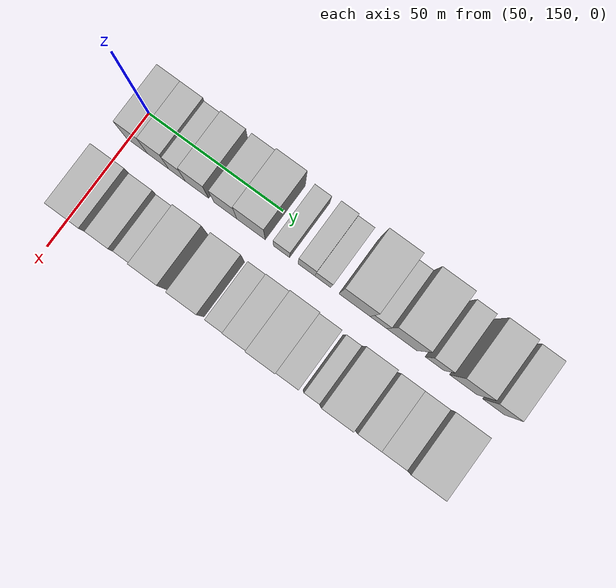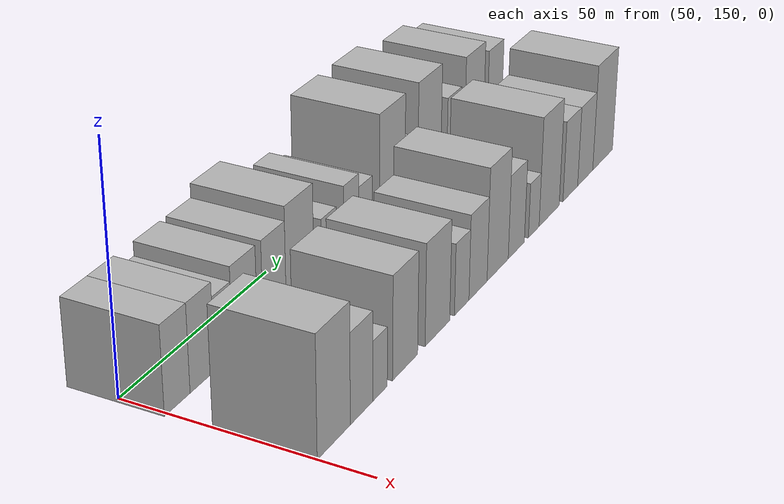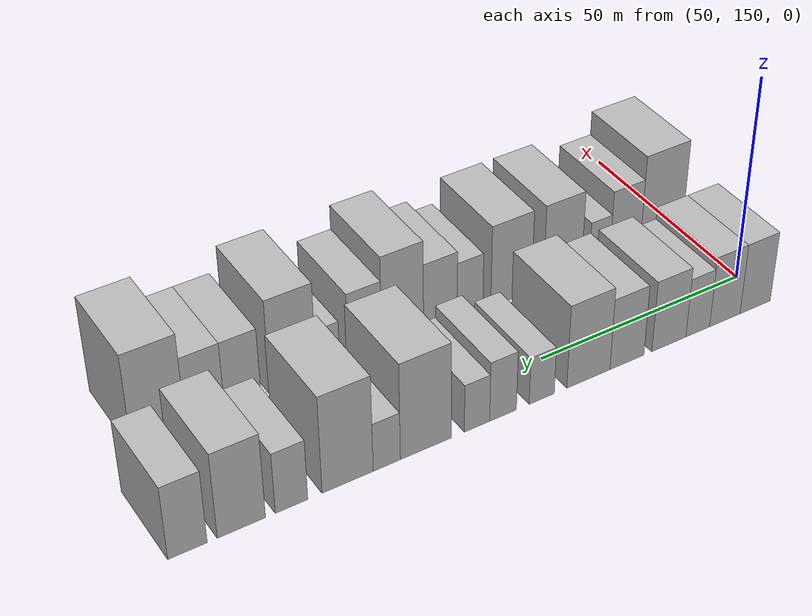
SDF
<sdf version="1.6">
 <world name="default">
  <model name="building_44">
   <static>1</static>
   <pose>50.0000 153.0716 0 0.000000 0.000000 0.000000</pose>
   <link name="link">
    <pose>0 0 9.00 0 0 0</pose>
    <collision name="collision"><geometry><box><size>20.0000 8.0604 18.0000</size></box></geometry></collision>
    <visual name="visual">
     <cast_shadows>0</cast_shadows>
     <geometry><box><size>20.0000 8.0604 18.0000</size></box></geometry>
     <material>
      <script>
       <uri>model://HANNAS_wall/materials/scripts</uri>
       <uri>model://HANNAS_wall/materials/textures</uri>
       <name>vrc/HANNAS_wall</name>
      </script>
     </material>
    </visual>
   </link>
  </model>
  <model name="building_45">
   <static>1</static>
   <pose>50.0000 161.0884 0 0.000000 0.000000 0.000000</pose>
   <link name="link">
    <pose>0 0 9.00 0 0 0</pose>
    <collision name="collision"><geometry><box><size>20.0000 7.9732 18.0000</size></box></geometry></collision>
    <visual name="visual">
     <cast_shadows>0</cast_shadows>
     <geometry><box><size>20.0000 7.9732 18.0000</size></box></geometry>
     <material>
      <script>
       <uri>model://HANNAS_wall/materials/scripts</uri>
       <uri>model://HANNAS_wall/materials/textures</uri>
       <name>vrc/HANNAS_wall</name>
      </script>
     </material>
    </visual>
   </link>
  </model>
  <model name="building_46">
   <static>1</static>
   <pose>50.0000 168.1415 0 0.000000 0.000000 0.000000</pose>
   <link name="link">
    <pose>0 0 7.50 0 0 0</pose>
    <collision name="collision"><geometry><box><size>20.0000 6.1328 15.0000</size></box></geometry></collision>
    <visual name="visual">
     <cast_shadows>0</cast_shadows>
     <geometry><box><size>20.0000 6.1328 15.0000</size></box></geometry>
     <material>
      <script>
       <uri>model://HANNAS_wall/materials/scripts</uri>
       <uri>model://HANNAS_wall/materials/textures</uri>
       <name>vrc/HANNAS_wall</name>
      </script>
     </material>
    </visual>
   </link>
  </model>
  <model name="building_47">
   <static>1</static>
   <pose>50.0000 175.5338 0 0.000000 0.000000 0.000000</pose>
   <link name="link">
    <pose>0 0 9.00 0 0 0</pose>
    <collision name="collision"><geometry><box><size>20.0000 8.6520 18.0000</size></box></geometry></collision>
    <visual name="visual">
     <cast_shadows>0</cast_shadows>
     <geometry><box><size>20.0000 8.6520 18.0000</size></box></geometry>
     <material>
      <script>
       <uri>model://HANNAS_wall/materials/scripts</uri>
       <uri>model://HANNAS_wall/materials/textures</uri>
       <name>vrc/HANNAS_wall</name>
      </script>
     </material>
    </visual>
   </link>
  </model>
  <model name="building_48">
   <static>1</static>
   <pose>50.0000 186.0772 0 0.000000 0.000000 0.000000</pose>
   <link name="link">
    <pose>0 0 9.00 0 0 0</pose>
    <collision name="collision"><geometry><box><size>20.0000 8.4348 18.0000</size></box></geometry></collision>
    <visual name="visual">
     <cast_shadows>0</cast_shadows>
     <geometry><box><size>20.0000 8.4348 18.0000</size></box></geometry>
     <material>
      <script>
       <uri>model://HANNAS_wall/materials/scripts</uri>
       <uri>model://HANNAS_wall/materials/textures</uri>
       <name>vrc/HANNAS_wall</name>
      </script>
     </material>
    </visual>
   </link>
  </model>
  <model name="building_49">
   <static>1</static>
   <pose>50.0000 195.5442 0 0.000000 0.000000 0.000000</pose>
   <link name="link">
    <pose>0 0 10.50 0 0 0</pose>
    <collision name="collision"><geometry><box><size>20.0000 10.4991 21.0000</size></box></geometry></collision>
    <visual name="visual">
     <cast_shadows>0</cast_shadows>
     <geometry><box><size>20.0000 10.4991 21.0000</size></box></geometry>
     <material>
      <script>
       <uri>model://HANNAS_wall/materials/scripts</uri>
       <uri>model://HANNAS_wall/materials/textures</uri>
       <name>vrc/HANNAS_wall</name>
      </script>
     </material>
    </visual>
   </link>
  </model>
  <model name="building_50">
   <static>1</static>
   <pose>50.0000 206.7703 0 0.000000 0.000000 0.000000</pose>
   <link name="link">
    <pose>0 0 6.00 0 0 0</pose>
    <collision name="collision"><geometry><box><size>20.0000 5.9532 12.0000</size></box></geometry></collision>
    <visual name="visual">
     <cast_shadows>0</cast_shadows>
     <geometry><box><size>20.0000 5.9532 12.0000</size></box></geometry>
     <material>
      <script>
       <uri>model://HANNAS_wall/materials/scripts</uri>
       <uri>model://HANNAS_wall/materials/textures</uri>
       <name>vrc/HANNAS_wall</name>
      </script>
     </material>
    </visual>
   </link>
  </model>
  <model name="building_51">
   <static>1</static>
   <pose>50.0000 215.8573 0 0.000000 0.000000 0.000000</pose>
   <link name="link">
    <pose>0 0 7.50 0 0 0</pose>
    <collision name="collision"><geometry><box><size>20.0000 6.2208 15.0000</size></box></geometry></collision>
    <visual name="visual">
     <cast_shadows>0</cast_shadows>
     <geometry><box><size>20.0000 6.2208 15.0000</size></box></geometry>
     <material>
      <script>
       <uri>model://HANNAS_wall/materials/scripts</uri>
       <uri>model://HANNAS_wall/materials/textures</uri>
       <name>vrc/HANNAS_wall</name>
      </script>
     </material>
    </visual>
   </link>
  </model>
  <model name="building_52">
   <static>1</static>
   <pose>50.0000 221.8595 0 0.000000 0.000000 0.000000</pose>
   <link name="link">
    <pose>0 0 6.00 0 0 0</pose>
    <collision name="collision"><geometry><box><size>20.0000 5.7837 12.0000</size></box></geometry></collision>
    <visual name="visual">
     <cast_shadows>0</cast_shadows>
     <geometry><box><size>20.0000 5.7837 12.0000</size></box></geometry>
     <material>
      <script>
       <uri>model://HANNAS_wall/materials/scripts</uri>
       <uri>model://HANNAS_wall/materials/textures</uri>
       <name>vrc/HANNAS_wall</name>
      </script>
     </material>
    </visual>
   </link>
  </model>
  <model name="building_53">
   <static>1</static>
   <pose>50.0000 233.4132 0 0.000000 0.000000 0.000000</pose>
   <link name="link">
    <pose>0 0 12.00 0 0 0</pose>
    <collision name="collision"><geometry><box><size>20.0000 11.3236 24.0000</size></box></geometry></collision>
    <visual name="visual">
     <cast_shadows>0</cast_shadows>
     <geometry><box><size>20.0000 11.3236 24.0000</size></box></geometry>
     <material>
      <script>
       <uri>model://HANNAS_wall/materials/scripts</uri>
       <uri>model://HANNAS_wall/materials/textures</uri>
       <name>vrc/HANNAS_wall</name>
      </script>
     </material>
    </visual>
   </link>
  </model>
  <model name="building_54">
   <static>1</static>
   <pose>50.0000 242.0458 0 0.000000 0.000000 0.000000</pose>
   <link name="link">
    <pose>0 0 6.00 0 0 0</pose>
    <collision name="collision"><geometry><box><size>20.0000 5.9414 12.0000</size></box></geometry></collision>
    <visual name="visual">
     <cast_shadows>0</cast_shadows>
     <geometry><box><size>20.0000 5.9414 12.0000</size></box></geometry>
     <material>
      <script>
       <uri>model://HANNAS_wall/materials/scripts</uri>
       <uri>model://HANNAS_wall/materials/textures</uri>
       <name>vrc/HANNAS_wall</name>
      </script>
     </material>
    </visual>
   </link>
  </model>
  <model name="building_55">
   <static>1</static>
   <pose>50.0000 250.5030 0 0.000000 0.000000 0.000000</pose>
   <link name="link">
    <pose>0 0 12.00 0 0 0</pose>
    <collision name="collision"><geometry><box><size>20.0000 10.9730 24.0000</size></box></geometry></collision>
    <visual name="visual">
     <cast_shadows>0</cast_shadows>
     <geometry><box><size>20.0000 10.9730 24.0000</size></box></geometry>
     <material>
      <script>
       <uri>model://HANNAS_wall/materials/scripts</uri>
       <uri>model://HANNAS_wall/materials/textures</uri>
       <name>vrc/HANNAS_wall</name>
      </script>
     </material>
    </visual>
   </link>
  </model>
  <model name="building_56">
   <static>1</static>
   <pose>50.0000 262.3821 0 0.000000 0.000000 0.000000</pose>
   <link name="link">
    <pose>0 0 7.50 0 0 0</pose>
    <collision name="collision"><geometry><box><size>20.0000 6.7853 15.0000</size></box></geometry></collision>
    <visual name="visual">
     <cast_shadows>0</cast_shadows>
     <geometry><box><size>20.0000 6.7853 15.0000</size></box></geometry>
     <material>
      <script>
       <uri>model://HANNAS_wall/materials/scripts</uri>
       <uri>model://HANNAS_wall/materials/textures</uri>
       <name>vrc/HANNAS_wall</name>
      </script>
     </material>
    </visual>
   </link>
  </model>
  <model name="building_57">
   <static>1</static>
   <pose>50.0000 272.6930 0 0.000000 0.000000 0.000000</pose>
   <link name="link">
    <pose>0 0 10.50 0 0 0</pose>
    <collision name="collision"><geometry><box><size>20.0000 9.8365 21.0000</size></box></geometry></collision>
    <visual name="visual">
     <cast_shadows>0</cast_shadows>
     <geometry><box><size>20.0000 9.8365 21.0000</size></box></geometry>
     <material>
      <script>
       <uri>model://HANNAS_wall/materials/scripts</uri>
       <uri>model://HANNAS_wall/materials/textures</uri>
       <name>vrc/HANNAS_wall</name>
      </script>
     </material>
    </visual>
   </link>
  </model>
  <model name="building_58">
   <static>1</static>
   <pose>50.0000 283.5262 0 0.000000 0.000000 0.000000</pose>
   <link name="link">
    <pose>0 0 9.00 0 0 0</pose>
    <collision name="collision"><geometry><box><size>20.0000 7.8297 18.0000</size></box></geometry></collision>
    <visual name="visual">
     <cast_shadows>0</cast_shadows>
     <geometry><box><size>20.0000 7.8297 18.0000</size></box></geometry>
     <material>
      <script>
       <uri>model://HANNAS_wall/materials/scripts</uri>
       <uri>model://HANNAS_wall/materials/textures</uri>
       <name>vrc/HANNAS_wall</name>
      </script>
     </material>
    </visual>
   </link>
  </model>
  <model name="building_103">
   <static>1</static>
   <pose>79.0000 155.5971 0 0.000000 0.000000 0.000000</pose>
   <link name="link">
    <pose>0 0 12.00 0 0 0</pose>
    <collision name="collision"><geometry><box><size>20.0000 11.4221 24.0000</size></box></geometry></collision>
    <visual name="visual">
     <cast_shadows>0</cast_shadows>
     <geometry><box><size>20.0000 11.4221 24.0000</size></box></geometry>
     <material>
      <script>
       <uri>model://HANNAS_wall/materials/scripts</uri>
       <uri>model://HANNAS_wall/materials/textures</uri>
       <name>vrc/HANNAS_wall</name>
      </script>
     </material>
    </visual>
   </link>
  </model>
  <model name="building_104">
   <static>1</static>
   <pose>79.0000 165.3561 0 0.000000 0.000000 0.000000</pose>
   <link name="link">
    <pose>0 0 9.00 0 0 0</pose>
    <collision name="collision"><geometry><box><size>20.0000 8.0958 18.0000</size></box></geometry></collision>
    <visual name="visual">
     <cast_shadows>0</cast_shadows>
     <geometry><box><size>20.0000 8.0958 18.0000</size></box></geometry>
     <material>
      <script>
       <uri>model://HANNAS_wall/materials/scripts</uri>
       <uri>model://HANNAS_wall/materials/textures</uri>
       <name>vrc/HANNAS_wall</name>
      </script>
     </material>
    </visual>
   </link>
  </model>
  <model name="building_105">
   <static>1</static>
   <pose>79.0000 172.1129 0 0.000000 0.000000 0.000000</pose>
   <link name="link">
    <pose>0 0 6.00 0 0 0</pose>
    <collision name="collision"><geometry><box><size>20.0000 5.4178 12.0000</size></box></geometry></collision>
    <visual name="visual">
     <cast_shadows>0</cast_shadows>
     <geometry><box><size>20.0000 5.4178 12.0000</size></box></geometry>
     <material>
      <script>
       <uri>model://HANNAS_wall/materials/scripts</uri>
       <uri>model://HANNAS_wall/materials/textures</uri>
       <name>vrc/HANNAS_wall</name>
      </script>
     </material>
    </visual>
   </link>
  </model>
  <model name="building_106">
   <static>1</static>
   <pose>79.0000 181.7265 0 0.000000 0.000000 0.000000</pose>
   <link name="link">
    <pose>0 0 10.50 0 0 0</pose>
    <collision name="collision"><geometry><box><size>20.0000 9.8094 21.0000</size></box></geometry></collision>
    <visual name="visual">
     <cast_shadows>0</cast_shadows>
     <geometry><box><size>20.0000 9.8094 21.0000</size></box></geometry>
     <material>
      <script>
       <uri>model://HANNAS_wall/materials/scripts</uri>
       <uri>model://HANNAS_wall/materials/textures</uri>
       <name>vrc/HANNAS_wall</name>
      </script>
     </material>
    </visual>
   </link>
  </model>
  <model name="building_107">
   <static>1</static>
   <pose>79.0000 194.7400 0 0.000000 0.000000 0.000000</pose>
   <link name="link">
    <pose>0 0 10.50 0 0 0</pose>
    <collision name="collision"><geometry><box><size>20.0000 10.2177 21.0000</size></box></geometry></collision>
    <visual name="visual">
     <cast_shadows>0</cast_shadows>
     <geometry><box><size>20.0000 10.2177 21.0000</size></box></geometry>
     <material>
      <script>
       <uri>model://HANNAS_wall/materials/scripts</uri>
       <uri>model://HANNAS_wall/materials/textures</uri>
       <name>vrc/HANNAS_wall</name>
      </script>
     </material>
    </visual>
   </link>
  </model>
  <model name="building_108">
   <static>1</static>
   <pose>79.0000 204.9880 0 0.000000 0.000000 0.000000</pose>
   <link name="link">
    <pose>0 0 7.50 0 0 0</pose>
    <collision name="collision"><geometry><box><size>20.0000 6.2783 15.0000</size></box></geometry></collision>
    <visual name="visual">
     <cast_shadows>0</cast_shadows>
     <geometry><box><size>20.0000 6.2783 15.0000</size></box></geometry>
     <material>
      <script>
       <uri>model://HANNAS_wall/materials/scripts</uri>
       <uri>model://HANNAS_wall/materials/textures</uri>
       <name>vrc/HANNAS_wall</name>
      </script>
     </material>
    </visual>
   </link>
  </model>
  <model name="building_109">
   <static>1</static>
   <pose>79.0000 212.1808 0 0.000000 0.000000 0.000000</pose>
   <link name="link">
    <pose>0 0 9.00 0 0 0</pose>
    <collision name="collision"><geometry><box><size>20.0000 8.1073 18.0000</size></box></geometry></collision>
    <visual name="visual">
     <cast_shadows>0</cast_shadows>
     <geometry><box><size>20.0000 8.1073 18.0000</size></box></geometry>
     <material>
      <script>
       <uri>model://HANNAS_wall/materials/scripts</uri>
       <uri>model://HANNAS_wall/materials/textures</uri>
       <name>vrc/HANNAS_wall</name>
      </script>
     </material>
    </visual>
   </link>
  </model>
  <model name="building_110">
   <static>1</static>
   <pose>79.0000 221.1583 0 0.000000 0.000000 0.000000</pose>
   <link name="link">
    <pose>0 0 12.00 0 0 0</pose>
    <collision name="collision"><geometry><box><size>20.0000 9.8478 24.0000</size></box></geometry></collision>
    <visual name="visual">
     <cast_shadows>0</cast_shadows>
     <geometry><box><size>20.0000 9.8478 24.0000</size></box></geometry>
     <material>
      <script>
       <uri>model://HANNAS_wall/materials/scripts</uri>
       <uri>model://HANNAS_wall/materials/textures</uri>
       <name>vrc/HANNAS_wall</name>
      </script>
     </material>
    </visual>
   </link>
  </model>
  <model name="building_111">
   <static>1</static>
   <pose>79.0000 229.9709 0 0.000000 0.000000 0.000000</pose>
   <link name="link">
    <pose>0 0 9.00 0 0 0</pose>
    <collision name="collision"><geometry><box><size>20.0000 7.7773 18.0000</size></box></geometry></collision>
    <visual name="visual">
     <cast_shadows>0</cast_shadows>
     <geometry><box><size>20.0000 7.7773 18.0000</size></box></geometry>
     <material>
      <script>
       <uri>model://HANNAS_wall/materials/scripts</uri>
       <uri>model://HANNAS_wall/materials/textures</uri>
       <name>vrc/HANNAS_wall</name>
      </script>
     </material>
    </visual>
   </link>
  </model>
  <model name="building_112">
   <static>1</static>
   <pose>79.0000 238.5228 0 0.000000 0.000000 0.000000</pose>
   <link name="link">
    <pose>0 0 6.00 0 0 0</pose>
    <collision name="collision"><geometry><box><size>20.0000 5.3265 12.0000</size></box></geometry></collision>
    <visual name="visual">
     <cast_shadows>0</cast_shadows>
     <geometry><box><size>20.0000 5.3265 12.0000</size></box></geometry>
     <material>
      <script>
       <uri>model://HANNAS_wall/materials/scripts</uri>
       <uri>model://HANNAS_wall/materials/textures</uri>
       <name>vrc/HANNAS_wall</name>
      </script>
     </material>
    </visual>
   </link>
  </model>
  <model name="building_113">
   <static>1</static>
   <pose>79.0000 246.3703 0 0.000000 0.000000 0.000000</pose>
   <link name="link">
    <pose>0 0 12.00 0 0 0</pose>
    <collision name="collision"><geometry><box><size>20.0000 10.3686 24.0000</size></box></geometry></collision>
    <visual name="visual">
     <cast_shadows>0</cast_shadows>
     <geometry><box><size>20.0000 10.3686 24.0000</size></box></geometry>
     <material>
      <script>
       <uri>model://HANNAS_wall/materials/scripts</uri>
       <uri>model://HANNAS_wall/materials/textures</uri>
       <name>vrc/HANNAS_wall</name>
      </script>
     </material>
    </visual>
   </link>
  </model>
  <model name="building_114">
   <static>1</static>
   <pose>79.0000 257.5162 0 0.000000 0.000000 0.000000</pose>
   <link name="link">
    <pose>0 0 9.00 0 0 0</pose>
    <collision name="collision"><geometry><box><size>20.0000 7.9232 18.0000</size></box></geometry></collision>
    <visual name="visual">
     <cast_shadows>0</cast_shadows>
     <geometry><box><size>20.0000 7.9232 18.0000</size></box></geometry>
     <material>
      <script>
       <uri>model://HANNAS_wall/materials/scripts</uri>
       <uri>model://HANNAS_wall/materials/textures</uri>
       <name>vrc/HANNAS_wall</name>
      </script>
     </material>
    </visual>
   </link>
  </model>
  <model name="building_115">
   <static>1</static>
   <pose>79.0000 265.6783 0 0.000000 0.000000 0.000000</pose>
   <link name="link">
    <pose>0 0 9.00 0 0 0</pose>
    <collision name="collision"><geometry><box><size>20.0000 8.4010 18.0000</size></box></geometry></collision>
    <visual name="visual">
     <cast_shadows>0</cast_shadows>
     <geometry><box><size>20.0000 8.4010 18.0000</size></box></geometry>
     <material>
      <script>
       <uri>model://HANNAS_wall/materials/scripts</uri>
       <uri>model://HANNAS_wall/materials/textures</uri>
       <name>vrc/HANNAS_wall</name>
      </script>
     </material>
    </visual>
   </link>
  </model>
  <model name="building_116">
   <static>1</static>
   <pose>79.0000 275.5676 0 0.000000 0.000000 0.000000</pose>
   <link name="link">
    <pose>0 0 12.00 0 0 0</pose>
    <collision name="collision"><geometry><box><size>20.0000 11.3777 24.0000</size></box></geometry></collision>
    <visual name="visual">
     <cast_shadows>0</cast_shadows>
     <geometry><box><size>20.0000 11.3777 24.0000</size></box></geometry>
     <material>
      <script>
       <uri>model://HANNAS_wall/materials/scripts</uri>
       <uri>model://HANNAS_wall/materials/textures</uri>
       <name>vrc/HANNAS_wall</name>
      </script>
     </material>
    </visual>
   </link>
  </model>
 </world>
</sdf>
